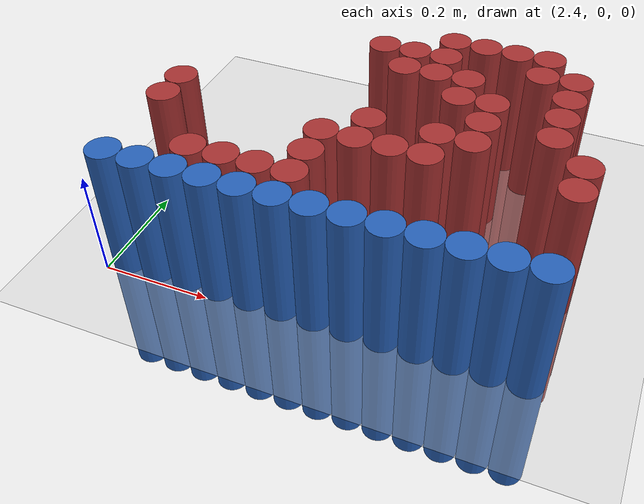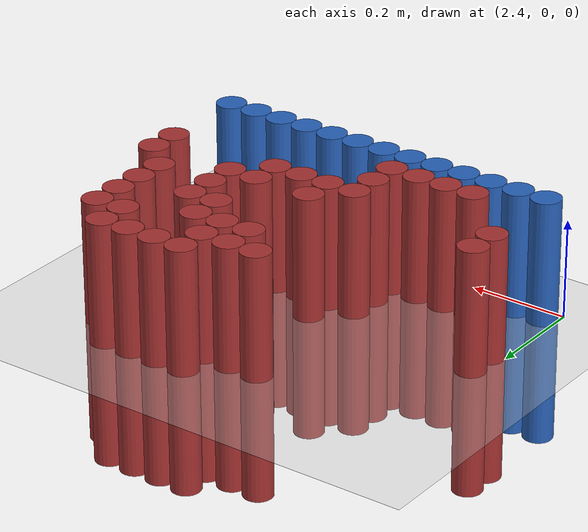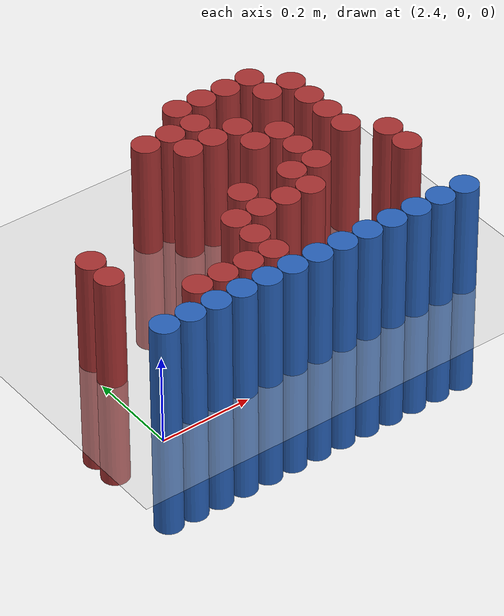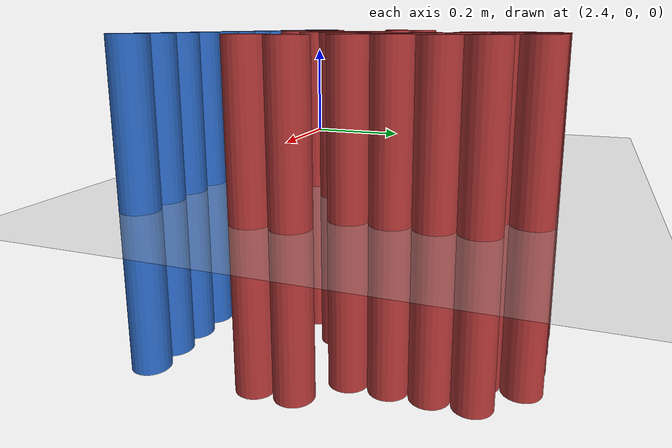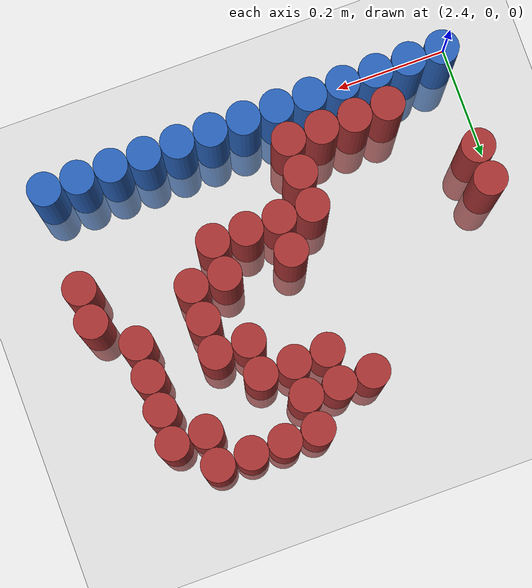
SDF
<sdf version="1.6">
 <world name="default">
  <model name="ground_plane">
   <static>1</static>
   <link name="link">
    <collision name="collision">
     <geometry><plane><normal>0 0 1</normal><size>100 100</size></plane></geometry>
     <surface><friction><ode><mu>100</mu><mu2>50</mu2></ode></friction></surface>
    </collision>
    <visual name="visual">
     <cast_shadows>0</cast_shadows>
     <geometry><plane><normal>0 0 1</normal><size>100 100</size></plane></geometry>
     <material>
      <script><uri>file://media/materials/scripts/gazebo.material</uri><name>Gazebo/Grey</name></script>
     </material>
    </visual>
   </link>
  </model>
  <model name="unit_cylinder_221">
   <static>1</static>
   <pose>2.850000 0.570000 0.000000 0.000000 0.000000 0.000000</pose>
   <link name="link">
    <inertial>
     <mass>1</mass>
     <inertia><ixx>0.145833</ixx><ixy>0</ixy><ixz>0</ixz><iyy>0.145833</iyy><iyz>0</iyz><izz>0.125</izz></inertia>
    </inertial>
    <collision name="collision">
     <geometry><cylinder><radius>0.030000</radius><length>0.5</length></cylinder></geometry>
    </collision>
    <visual name="visual">
     <geometry><cylinder><radius>0.030000</radius><length>0.5</length></cylinder></geometry>
     <material>
      <ambient>0.648000 0.192000 0.192000 1</ambient>
      <diffuse>0.648000 0.192000 0.192000 1</diffuse>
     </material>
     <material>
      <script><name>Gazebo/Grey</name><uri>file://media/materials/scripts/gazebo.material</uri></script>
     </material>
    </visual>
   </link>
  </model>
  <model name="unit_cylinder_222">
   <static>1</static>
   <pose>2.910000 0.570000 0.000000 0.000000 0.000000 0.000000</pose>
   <link name="link">
    <inertial>
     <mass>1</mass>
     <inertia><ixx>0.145833</ixx><ixy>0</ixy><ixz>0</ixz><iyy>0.145833</iyy><iyz>0</iyz><izz>0.125</izz></inertia>
    </inertial>
    <collision name="collision">
     <geometry><cylinder><radius>0.030000</radius><length>0.5</length></cylinder></geometry>
    </collision>
    <visual name="visual">
     <geometry><cylinder><radius>0.030000</radius><length>0.5</length></cylinder></geometry>
     <material>
      <ambient>0.648000 0.192000 0.192000 1</ambient>
      <diffuse>0.648000 0.192000 0.192000 1</diffuse>
     </material>
     <material>
      <script><name>Gazebo/Grey</name><uri>file://media/materials/scripts/gazebo.material</uri></script>
     </material>
    </visual>
   </link>
  </model>
  <model name="unit_cylinder_223">
   <static>1</static>
   <pose>2.970000 0.570000 0.000000 0.000000 0.000000 0.000000</pose>
   <link name="link">
    <inertial>
     <mass>1</mass>
     <inertia><ixx>0.145833</ixx><ixy>0</ixy><ixz>0</ixz><iyy>0.145833</iyy><iyz>0</iyz><izz>0.125</izz></inertia>
    </inertial>
    <collision name="collision">
     <geometry><cylinder><radius>0.030000</radius><length>0.5</length></cylinder></geometry>
    </collision>
    <visual name="visual">
     <geometry><cylinder><radius>0.030000</radius><length>0.5</length></cylinder></geometry>
     <material>
      <ambient>0.648000 0.192000 0.192000 1</ambient>
      <diffuse>0.648000 0.192000 0.192000 1</diffuse>
     </material>
     <material>
      <script><name>Gazebo/Grey</name><uri>file://media/materials/scripts/gazebo.material</uri></script>
     </material>
    </visual>
   </link>
  </model>
  <model name="unit_cylinder_224">
   <static>1</static>
   <pose>3.030000 0.570000 0.000000 0.000000 0.000000 0.000000</pose>
   <link name="link">
    <inertial>
     <mass>1</mass>
     <inertia><ixx>0.145833</ixx><ixy>0</ixy><ixz>0</ixz><iyy>0.145833</iyy><iyz>0</iyz><izz>0.125</izz></inertia>
    </inertial>
    <collision name="collision">
     <geometry><cylinder><radius>0.030000</radius><length>0.5</length></cylinder></geometry>
    </collision>
    <visual name="visual">
     <geometry><cylinder><radius>0.030000</radius><length>0.5</length></cylinder></geometry>
     <material>
      <ambient>0.648000 0.192000 0.192000 1</ambient>
      <diffuse>0.648000 0.192000 0.192000 1</diffuse>
     </material>
     <material>
      <script><name>Gazebo/Grey</name><uri>file://media/materials/scripts/gazebo.material</uri></script>
     </material>
    </visual>
   </link>
  </model>
  <model name="unit_cylinder_231">
   <static>1</static>
   <pose>2.730000 0.510000 0.000000 0.000000 0.000000 0.000000</pose>
   <link name="link">
    <inertial>
     <mass>1</mass>
     <inertia><ixx>0.145833</ixx><ixy>0</ixy><ixz>0</ixz><iyy>0.145833</iyy><iyz>0</iyz><izz>0.125</izz></inertia>
    </inertial>
    <collision name="collision">
     <geometry><cylinder><radius>0.030000</radius><length>0.5</length></cylinder></geometry>
    </collision>
    <visual name="visual">
     <geometry><cylinder><radius>0.030000</radius><length>0.5</length></cylinder></geometry>
     <material>
      <ambient>0.648000 0.192000 0.192000 1</ambient>
      <diffuse>0.648000 0.192000 0.192000 1</diffuse>
     </material>
     <material>
      <script><name>Gazebo/Grey</name><uri>file://media/materials/scripts/gazebo.material</uri></script>
     </material>
    </visual>
   </link>
  </model>
  <model name="unit_cylinder_232">
   <static>1</static>
   <pose>2.790000 0.510000 0.000000 0.000000 0.000000 0.000000</pose>
   <link name="link">
    <inertial>
     <mass>1</mass>
     <inertia><ixx>0.145833</ixx><ixy>0</ixy><ixz>0</ixz><iyy>0.145833</iyy><iyz>0</iyz><izz>0.125</izz></inertia>
    </inertial>
    <collision name="collision">
     <geometry><cylinder><radius>0.030000</radius><length>0.5</length></cylinder></geometry>
    </collision>
    <visual name="visual">
     <geometry><cylinder><radius>0.030000</radius><length>0.5</length></cylinder></geometry>
     <material>
      <ambient>0.648000 0.192000 0.192000 1</ambient>
      <diffuse>0.648000 0.192000 0.192000 1</diffuse>
     </material>
     <material>
      <script><name>Gazebo/Grey</name><uri>file://media/materials/scripts/gazebo.material</uri></script>
     </material>
    </visual>
   </link>
  </model>
  <model name="unit_cylinder_233">
   <static>1</static>
   <pose>2.850000 0.510000 0.000000 0.000000 0.000000 0.000000</pose>
   <link name="link">
    <inertial>
     <mass>1</mass>
     <inertia><ixx>0.145833</ixx><ixy>0</ixy><ixz>0</ixz><iyy>0.145833</iyy><iyz>0</iyz><izz>0.125</izz></inertia>
    </inertial>
    <collision name="collision">
     <geometry><cylinder><radius>0.030000</radius><length>0.5</length></cylinder></geometry>
    </collision>
    <visual name="visual">
     <geometry><cylinder><radius>0.030000</radius><length>0.5</length></cylinder></geometry>
     <material>
      <ambient>0.648000 0.192000 0.192000 1</ambient>
      <diffuse>0.648000 0.192000 0.192000 1</diffuse>
     </material>
     <material>
      <script><name>Gazebo/Grey</name><uri>file://media/materials/scripts/gazebo.material</uri></script>
     </material>
    </visual>
   </link>
  </model>
  <model name="unit_cylinder_234">
   <static>1</static>
   <pose>3.030000 0.510000 0.000000 0.000000 0.000000 0.000000</pose>
   <link name="link">
    <inertial>
     <mass>1</mass>
     <inertia><ixx>0.145833</ixx><ixy>0</ixy><ixz>0</ixz><iyy>0.145833</iyy><iyz>0</iyz><izz>0.125</izz></inertia>
    </inertial>
    <collision name="collision">
     <geometry><cylinder><radius>0.030000</radius><length>0.5</length></cylinder></geometry>
    </collision>
    <visual name="visual">
     <geometry><cylinder><radius>0.030000</radius><length>0.5</length></cylinder></geometry>
     <material>
      <ambient>0.648000 0.192000 0.192000 1</ambient>
      <diffuse>0.648000 0.192000 0.192000 1</diffuse>
     </material>
     <material>
      <script><name>Gazebo/Grey</name><uri>file://media/materials/scripts/gazebo.material</uri></script>
     </material>
    </visual>
   </link>
  </model>
  <model name="unit_cylinder_235">
   <static>1</static>
   <pose>3.090000 0.510000 0.000000 0.000000 0.000000 0.000000</pose>
   <link name="link">
    <inertial>
     <mass>1</mass>
     <inertia><ixx>0.145833</ixx><ixy>0</ixy><ixz>0</ixz><iyy>0.145833</iyy><iyz>0</iyz><izz>0.125</izz></inertia>
    </inertial>
    <collision name="collision">
     <geometry><cylinder><radius>0.030000</radius><length>0.5</length></cylinder></geometry>
    </collision>
    <visual name="visual">
     <geometry><cylinder><radius>0.030000</radius><length>0.5</length></cylinder></geometry>
     <material>
      <ambient>0.648000 0.192000 0.192000 1</ambient>
      <diffuse>0.648000 0.192000 0.192000 1</diffuse>
     </material>
     <material>
      <script><name>Gazebo/Grey</name><uri>file://media/materials/scripts/gazebo.material</uri></script>
     </material>
    </visual>
   </link>
  </model>
  <model name="unit_cylinder_242">
   <static>1</static>
   <pose>2.790000 0.450000 0.000000 0.000000 0.000000 0.000000</pose>
   <link name="link">
    <inertial>
     <mass>1</mass>
     <inertia><ixx>0.145833</ixx><ixy>0</ixy><ixz>0</ixz><iyy>0.145833</iyy><iyz>0</iyz><izz>0.125</izz></inertia>
    </inertial>
    <collision name="collision">
     <geometry><cylinder><radius>0.030000</radius><length>0.5</length></cylinder></geometry>
    </collision>
    <visual name="visual">
     <geometry><cylinder><radius>0.030000</radius><length>0.5</length></cylinder></geometry>
     <material>
      <ambient>0.648000 0.192000 0.192000 1</ambient>
      <diffuse>0.648000 0.192000 0.192000 1</diffuse>
     </material>
     <material>
      <script><name>Gazebo/Grey</name><uri>file://media/materials/scripts/gazebo.material</uri></script>
     </material>
    </visual>
   </link>
  </model>
  <model name="unit_cylinder_243">
   <static>1</static>
   <pose>2.850000 0.450000 0.000000 0.000000 0.000000 0.000000</pose>
   <link name="link">
    <inertial>
     <mass>1</mass>
     <inertia><ixx>0.145833</ixx><ixy>0</ixy><ixz>0</ixz><iyy>0.145833</iyy><iyz>0</iyz><izz>0.125</izz></inertia>
    </inertial>
    <collision name="collision">
     <geometry><cylinder><radius>0.030000</radius><length>0.5</length></cylinder></geometry>
    </collision>
    <visual name="visual">
     <geometry><cylinder><radius>0.030000</radius><length>0.5</length></cylinder></geometry>
     <material>
      <ambient>0.648000 0.192000 0.192000 1</ambient>
      <diffuse>0.648000 0.192000 0.192000 1</diffuse>
     </material>
     <material>
      <script><name>Gazebo/Grey</name><uri>file://media/materials/scripts/gazebo.material</uri></script>
     </material>
    </visual>
   </link>
  </model>
  <model name="unit_cylinder_244">
   <static>1</static>
   <pose>2.910000 0.450000 0.000000 0.000000 0.000000 0.000000</pose>
   <link name="link">
    <inertial>
     <mass>1</mass>
     <inertia><ixx>0.145833</ixx><ixy>0</ixy><ixz>0</ixz><iyy>0.145833</iyy><iyz>0</iyz><izz>0.125</izz></inertia>
    </inertial>
    <collision name="collision">
     <geometry><cylinder><radius>0.030000</radius><length>0.5</length></cylinder></geometry>
    </collision>
    <visual name="visual">
     <geometry><cylinder><radius>0.030000</radius><length>0.5</length></cylinder></geometry>
     <material>
      <ambient>0.648000 0.192000 0.192000 1</ambient>
      <diffuse>0.648000 0.192000 0.192000 1</diffuse>
     </material>
     <material>
      <script><name>Gazebo/Grey</name><uri>file://media/materials/scripts/gazebo.material</uri></script>
     </material>
    </visual>
   </link>
  </model>
  <model name="unit_cylinder_245">
   <static>1</static>
   <pose>3.090000 0.450000 0.000000 0.000000 0.000000 0.000000</pose>
   <link name="link">
    <inertial>
     <mass>1</mass>
     <inertia><ixx>0.145833</ixx><ixy>0</ixy><ixz>0</ixz><iyy>0.145833</iyy><iyz>0</iyz><izz>0.125</izz></inertia>
    </inertial>
    <collision name="collision">
     <geometry><cylinder><radius>0.030000</radius><length>0.5</length></cylinder></geometry>
    </collision>
    <visual name="visual">
     <geometry><cylinder><radius>0.030000</radius><length>0.5</length></cylinder></geometry>
     <material>
      <ambient>0.648000 0.192000 0.192000 1</ambient>
      <diffuse>0.648000 0.192000 0.192000 1</diffuse>
     </material>
     <material>
      <script><name>Gazebo/Grey</name><uri>file://media/materials/scripts/gazebo.material</uri></script>
     </material>
    </visual>
   </link>
  </model>
  <model name="unit_cylinder_248">
   <static>1</static>
   <pose>2.910000 0.390000 0.000000 0.000000 0.000000 0.000000</pose>
   <link name="link">
    <inertial>
     <mass>1</mass>
     <inertia><ixx>0.145833</ixx><ixy>0</ixy><ixz>0</ixz><iyy>0.145833</iyy><iyz>0</iyz><izz>0.125</izz></inertia>
    </inertial>
    <collision name="collision">
     <geometry><cylinder><radius>0.030000</radius><length>0.5</length></cylinder></geometry>
    </collision>
    <visual name="visual">
     <geometry><cylinder><radius>0.030000</radius><length>0.5</length></cylinder></geometry>
     <material>
      <ambient>0.648000 0.192000 0.192000 1</ambient>
      <diffuse>0.648000 0.192000 0.192000 1</diffuse>
     </material>
     <material>
      <script><name>Gazebo/Grey</name><uri>file://media/materials/scripts/gazebo.material</uri></script>
     </material>
    </visual>
   </link>
  </model>
  <model name="unit_cylinder_249">
   <static>1</static>
   <pose>2.970000 0.390000 0.000000 0.000000 0.000000 0.000000</pose>
   <link name="link">
    <inertial>
     <mass>1</mass>
     <inertia><ixx>0.145833</ixx><ixy>0</ixy><ixz>0</ixz><iyy>0.145833</iyy><iyz>0</iyz><izz>0.125</izz></inertia>
    </inertial>
    <collision name="collision">
     <geometry><cylinder><radius>0.030000</radius><length>0.5</length></cylinder></geometry>
    </collision>
    <visual name="visual">
     <geometry><cylinder><radius>0.030000</radius><length>0.5</length></cylinder></geometry>
     <material>
      <ambient>0.648000 0.192000 0.192000 1</ambient>
      <diffuse>0.648000 0.192000 0.192000 1</diffuse>
     </material>
     <material>
      <script><name>Gazebo/Grey</name><uri>file://media/materials/scripts/gazebo.material</uri></script>
     </material>
    </visual>
   </link>
  </model>
  <model name="unit_cylinder_250">
   <static>1</static>
   <pose>3.090000 0.390000 0.000000 0.000000 0.000000 0.000000</pose>
   <link name="link">
    <inertial>
     <mass>1</mass>
     <inertia><ixx>0.145833</ixx><ixy>0</ixy><ixz>0</ixz><iyy>0.145833</iyy><iyz>0</iyz><izz>0.125</izz></inertia>
    </inertial>
    <collision name="collision">
     <geometry><cylinder><radius>0.030000</radius><length>0.5</length></cylinder></geometry>
    </collision>
    <visual name="visual">
     <geometry><cylinder><radius>0.030000</radius><length>0.5</length></cylinder></geometry>
     <material>
      <ambient>0.648000 0.192000 0.192000 1</ambient>
      <diffuse>0.648000 0.192000 0.192000 1</diffuse>
     </material>
     <material>
      <script><name>Gazebo/Grey</name><uri>file://media/materials/scripts/gazebo.material</uri></script>
     </material>
    </visual>
   </link>
  </model>
  <model name="unit_cylinder_256">
   <static>1</static>
   <pose>2.970000 0.330000 0.000000 0.000000 0.000000 0.000000</pose>
   <link name="link">
    <inertial>
     <mass>1</mass>
     <inertia><ixx>0.145833</ixx><ixy>0</ixy><ixz>0</ixz><iyy>0.145833</iyy><iyz>0</iyz><izz>0.125</izz></inertia>
    </inertial>
    <collision name="collision">
     <geometry><cylinder><radius>0.030000</radius><length>0.5</length></cylinder></geometry>
    </collision>
    <visual name="visual">
     <geometry><cylinder><radius>0.030000</radius><length>0.5</length></cylinder></geometry>
     <material>
      <ambient>0.648000 0.192000 0.192000 1</ambient>
      <diffuse>0.648000 0.192000 0.192000 1</diffuse>
     </material>
     <material>
      <script><name>Gazebo/Grey</name><uri>file://media/materials/scripts/gazebo.material</uri></script>
     </material>
    </visual>
   </link>
  </model>
  <model name="unit_cylinder_257">
   <static>1</static>
   <pose>3.090000 0.330000 0.000000 0.000000 0.000000 0.000000</pose>
   <link name="link">
    <inertial>
     <mass>1</mass>
     <inertia><ixx>0.145833</ixx><ixy>0</ixy><ixz>0</ixz><iyy>0.145833</iyy><iyz>0</iyz><izz>0.125</izz></inertia>
    </inertial>
    <collision name="collision">
     <geometry><cylinder><radius>0.030000</radius><length>0.5</length></cylinder></geometry>
    </collision>
    <visual name="visual">
     <geometry><cylinder><radius>0.030000</radius><length>0.5</length></cylinder></geometry>
     <material>
      <ambient>0.648000 0.192000 0.192000 1</ambient>
      <diffuse>0.648000 0.192000 0.192000 1</diffuse>
     </material>
     <material>
      <script><name>Gazebo/Grey</name><uri>file://media/materials/scripts/gazebo.material</uri></script>
     </material>
    </visual>
   </link>
  </model>
  <model name="unit_cylinder_265">
   <static>1</static>
   <pose>2.430000 0.270000 0.000000 0.000000 0.000000 0.000000</pose>
   <link name="link">
    <inertial>
     <mass>1</mass>
     <inertia><ixx>0.145833</ixx><ixy>0</ixy><ixz>0</ixz><iyy>0.145833</iyy><iyz>0</iyz><izz>0.125</izz></inertia>
    </inertial>
    <collision name="collision">
     <geometry><cylinder><radius>0.030000</radius><length>0.5</length></cylinder></geometry>
    </collision>
    <visual name="visual">
     <geometry><cylinder><radius>0.030000</radius><length>0.5</length></cylinder></geometry>
     <material>
      <ambient>0.648000 0.192000 0.192000 1</ambient>
      <diffuse>0.648000 0.192000 0.192000 1</diffuse>
     </material>
     <material>
      <script><name>Gazebo/Grey</name><uri>file://media/materials/scripts/gazebo.material</uri></script>
     </material>
    </visual>
   </link>
  </model>
  <model name="unit_cylinder_266">
   <static>1</static>
   <pose>2.790000 0.270000 0.000000 0.000000 0.000000 0.000000</pose>
   <link name="link">
    <inertial>
     <mass>1</mass>
     <inertia><ixx>0.145833</ixx><ixy>0</ixy><ixz>0</ixz><iyy>0.145833</iyy><iyz>0</iyz><izz>0.125</izz></inertia>
    </inertial>
    <collision name="collision">
     <geometry><cylinder><radius>0.030000</radius><length>0.5</length></cylinder></geometry>
    </collision>
    <visual name="visual">
     <geometry><cylinder><radius>0.030000</radius><length>0.5</length></cylinder></geometry>
     <material>
      <ambient>0.648000 0.192000 0.192000 1</ambient>
      <diffuse>0.648000 0.192000 0.192000 1</diffuse>
     </material>
     <material>
      <script><name>Gazebo/Grey</name><uri>file://media/materials/scripts/gazebo.material</uri></script>
     </material>
    </visual>
   </link>
  </model>
  <model name="unit_cylinder_267">
   <static>1</static>
   <pose>2.910000 0.270000 0.000000 0.000000 0.000000 0.000000</pose>
   <link name="link">
    <inertial>
     <mass>1</mass>
     <inertia><ixx>0.145833</ixx><ixy>0</ixy><ixz>0</ixz><iyy>0.145833</iyy><iyz>0</iyz><izz>0.125</izz></inertia>
    </inertial>
    <collision name="collision">
     <geometry><cylinder><radius>0.030000</radius><length>0.5</length></cylinder></geometry>
    </collision>
    <visual name="visual">
     <geometry><cylinder><radius>0.030000</radius><length>0.5</length></cylinder></geometry>
     <material>
      <ambient>0.648000 0.192000 0.192000 1</ambient>
      <diffuse>0.648000 0.192000 0.192000 1</diffuse>
     </material>
     <material>
      <script><name>Gazebo/Grey</name><uri>file://media/materials/scripts/gazebo.material</uri></script>
     </material>
    </visual>
   </link>
  </model>
  <model name="unit_cylinder_268">
   <static>1</static>
   <pose>2.970000 0.270000 0.000000 0.000000 0.000000 0.000000</pose>
   <link name="link">
    <inertial>
     <mass>1</mass>
     <inertia><ixx>0.145833</ixx><ixy>0</ixy><ixz>0</ixz><iyy>0.145833</iyy><iyz>0</iyz><izz>0.125</izz></inertia>
    </inertial>
    <collision name="collision">
     <geometry><cylinder><radius>0.030000</radius><length>0.5</length></cylinder></geometry>
    </collision>
    <visual name="visual">
     <geometry><cylinder><radius>0.030000</radius><length>0.5</length></cylinder></geometry>
     <material>
      <ambient>0.648000 0.192000 0.192000 1</ambient>
      <diffuse>0.648000 0.192000 0.192000 1</diffuse>
     </material>
     <material>
      <script><name>Gazebo/Grey</name><uri>file://media/materials/scripts/gazebo.material</uri></script>
     </material>
    </visual>
   </link>
  </model>
  <model name="unit_cylinder_269">
   <static>1</static>
   <pose>3.150000 0.270000 0.000000 0.000000 0.000000 0.000000</pose>
   <link name="link">
    <inertial>
     <mass>1</mass>
     <inertia><ixx>0.145833</ixx><ixy>0</ixy><ixz>0</ixz><iyy>0.145833</iyy><iyz>0</iyz><izz>0.125</izz></inertia>
    </inertial>
    <collision name="collision">
     <geometry><cylinder><radius>0.030000</radius><length>0.5</length></cylinder></geometry>
    </collision>
    <visual name="visual">
     <geometry><cylinder><radius>0.030000</radius><length>0.5</length></cylinder></geometry>
     <material>
      <ambient>0.648000 0.192000 0.192000 1</ambient>
      <diffuse>0.648000 0.192000 0.192000 1</diffuse>
     </material>
     <material>
      <script><name>Gazebo/Grey</name><uri>file://media/materials/scripts/gazebo.material</uri></script>
     </material>
    </visual>
   </link>
  </model>
  <model name="unit_cylinder_274">
   <static>1</static>
   <pose>2.430000 0.210000 0.000000 0.000000 0.000000 0.000000</pose>
   <link name="link">
    <inertial>
     <mass>1</mass>
     <inertia><ixx>0.145833</ixx><ixy>0</ixy><ixz>0</ixz><iyy>0.145833</iyy><iyz>0</iyz><izz>0.125</izz></inertia>
    </inertial>
    <collision name="collision">
     <geometry><cylinder><radius>0.030000</radius><length>0.5</length></cylinder></geometry>
    </collision>
    <visual name="visual">
     <geometry><cylinder><radius>0.030000</radius><length>0.5</length></cylinder></geometry>
     <material>
      <ambient>0.648000 0.192000 0.192000 1</ambient>
      <diffuse>0.648000 0.192000 0.192000 1</diffuse>
     </material>
     <material>
      <script><name>Gazebo/Grey</name><uri>file://media/materials/scripts/gazebo.material</uri></script>
     </material>
    </visual>
   </link>
  </model>
  <model name="unit_cylinder_275">
   <static>1</static>
   <pose>2.730000 0.210000 0.000000 0.000000 0.000000 0.000000</pose>
   <link name="link">
    <inertial>
     <mass>1</mass>
     <inertia><ixx>0.145833</ixx><ixy>0</ixy><ixz>0</ixz><iyy>0.145833</iyy><iyz>0</iyz><izz>0.125</izz></inertia>
    </inertial>
    <collision name="collision">
     <geometry><cylinder><radius>0.030000</radius><length>0.5</length></cylinder></geometry>
    </collision>
    <visual name="visual">
     <geometry><cylinder><radius>0.030000</radius><length>0.5</length></cylinder></geometry>
     <material>
      <ambient>0.648000 0.192000 0.192000 1</ambient>
      <diffuse>0.648000 0.192000 0.192000 1</diffuse>
     </material>
     <material>
      <script><name>Gazebo/Grey</name><uri>file://media/materials/scripts/gazebo.material</uri></script>
     </material>
    </visual>
   </link>
  </model>
  <model name="unit_cylinder_276">
   <static>1</static>
   <pose>2.790000 0.210000 0.000000 0.000000 0.000000 0.000000</pose>
   <link name="link">
    <inertial>
     <mass>1</mass>
     <inertia><ixx>0.145833</ixx><ixy>0</ixy><ixz>0</ixz><iyy>0.145833</iyy><iyz>0</iyz><izz>0.125</izz></inertia>
    </inertial>
    <collision name="collision">
     <geometry><cylinder><radius>0.030000</radius><length>0.5</length></cylinder></geometry>
    </collision>
    <visual name="visual">
     <geometry><cylinder><radius>0.030000</radius><length>0.5</length></cylinder></geometry>
     <material>
      <ambient>0.648000 0.192000 0.192000 1</ambient>
      <diffuse>0.648000 0.192000 0.192000 1</diffuse>
     </material>
     <material>
      <script><name>Gazebo/Grey</name><uri>file://media/materials/scripts/gazebo.material</uri></script>
     </material>
    </visual>
   </link>
  </model>
  <model name="unit_cylinder_277">
   <static>1</static>
   <pose>2.850000 0.210000 0.000000 0.000000 0.000000 0.000000</pose>
   <link name="link">
    <inertial>
     <mass>1</mass>
     <inertia><ixx>0.145833</ixx><ixy>0</ixy><ixz>0</ixz><iyy>0.145833</iyy><iyz>0</iyz><izz>0.125</izz></inertia>
    </inertial>
    <collision name="collision">
     <geometry><cylinder><radius>0.030000</radius><length>0.5</length></cylinder></geometry>
    </collision>
    <visual name="visual">
     <geometry><cylinder><radius>0.030000</radius><length>0.5</length></cylinder></geometry>
     <material>
      <ambient>0.648000 0.192000 0.192000 1</ambient>
      <diffuse>0.648000 0.192000 0.192000 1</diffuse>
     </material>
     <material>
      <script><name>Gazebo/Grey</name><uri>file://media/materials/scripts/gazebo.material</uri></script>
     </material>
    </visual>
   </link>
  </model>
  <model name="unit_cylinder_278">
   <static>1</static>
   <pose>2.910000 0.210000 0.000000 0.000000 0.000000 0.000000</pose>
   <link name="link">
    <inertial>
     <mass>1</mass>
     <inertia><ixx>0.145833</ixx><ixy>0</ixy><ixz>0</ixz><iyy>0.145833</iyy><iyz>0</iyz><izz>0.125</izz></inertia>
    </inertial>
    <collision name="collision">
     <geometry><cylinder><radius>0.030000</radius><length>0.5</length></cylinder></geometry>
    </collision>
    <visual name="visual">
     <geometry><cylinder><radius>0.030000</radius><length>0.5</length></cylinder></geometry>
     <material>
      <ambient>0.648000 0.192000 0.192000 1</ambient>
      <diffuse>0.648000 0.192000 0.192000 1</diffuse>
     </material>
     <material>
      <script><name>Gazebo/Grey</name><uri>file://media/materials/scripts/gazebo.material</uri></script>
     </material>
    </visual>
   </link>
  </model>
  <model name="unit_cylinder_279">
   <static>1</static>
   <pose>3.150000 0.210000 0.000000 0.000000 0.000000 0.000000</pose>
   <link name="link">
    <inertial>
     <mass>1</mass>
     <inertia><ixx>0.145833</ixx><ixy>0</ixy><ixz>0</ixz><iyy>0.145833</iyy><iyz>0</iyz><izz>0.125</izz></inertia>
    </inertial>
    <collision name="collision">
     <geometry><cylinder><radius>0.030000</radius><length>0.5</length></cylinder></geometry>
    </collision>
    <visual name="visual">
     <geometry><cylinder><radius>0.030000</radius><length>0.5</length></cylinder></geometry>
     <material>
      <ambient>0.648000 0.192000 0.192000 1</ambient>
      <diffuse>0.648000 0.192000 0.192000 1</diffuse>
     </material>
     <material>
      <script><name>Gazebo/Grey</name><uri>file://media/materials/scripts/gazebo.material</uri></script>
     </material>
    </visual>
   </link>
  </model>
  <model name="unit_cylinder_284">
   <static>1</static>
   <pose>2.730000 0.150000 0.000000 0.000000 0.000000 0.000000</pose>
   <link name="link">
    <inertial>
     <mass>1</mass>
     <inertia><ixx>0.145833</ixx><ixy>0</ixy><ixz>0</ixz><iyy>0.145833</iyy><iyz>0</iyz><izz>0.125</izz></inertia>
    </inertial>
    <collision name="collision">
     <geometry><cylinder><radius>0.030000</radius><length>0.5</length></cylinder></geometry>
    </collision>
    <visual name="visual">
     <geometry><cylinder><radius>0.030000</radius><length>0.5</length></cylinder></geometry>
     <material>
      <ambient>0.648000 0.192000 0.192000 1</ambient>
      <diffuse>0.648000 0.192000 0.192000 1</diffuse>
     </material>
     <material>
      <script><name>Gazebo/Grey</name><uri>file://media/materials/scripts/gazebo.material</uri></script>
     </material>
    </visual>
   </link>
  </model>
  <model name="unit_cylinder_295">
   <static>1</static>
   <pose>2.550000 0.090000 0.000000 0.000000 0.000000 0.000000</pose>
   <link name="link">
    <inertial>
     <mass>1</mass>
     <inertia><ixx>0.145833</ixx><ixy>0</ixy><ixz>0</ixz><iyy>0.145833</iyy><iyz>0</iyz><izz>0.125</izz></inertia>
    </inertial>
    <collision name="collision">
     <geometry><cylinder><radius>0.030000</radius><length>0.5</length></cylinder></geometry>
    </collision>
    <visual name="visual">
     <geometry><cylinder><radius>0.030000</radius><length>0.5</length></cylinder></geometry>
     <material>
      <ambient>0.648000 0.192000 0.192000 1</ambient>
      <diffuse>0.648000 0.192000 0.192000 1</diffuse>
     </material>
     <material>
      <script><name>Gazebo/Grey</name><uri>file://media/materials/scripts/gazebo.material</uri></script>
     </material>
    </visual>
   </link>
  </model>
  <model name="unit_cylinder_296">
   <static>1</static>
   <pose>2.610000 0.090000 0.000000 0.000000 0.000000 0.000000</pose>
   <link name="link">
    <inertial>
     <mass>1</mass>
     <inertia><ixx>0.145833</ixx><ixy>0</ixy><ixz>0</ixz><iyy>0.145833</iyy><iyz>0</iyz><izz>0.125</izz></inertia>
    </inertial>
    <collision name="collision">
     <geometry><cylinder><radius>0.030000</radius><length>0.5</length></cylinder></geometry>
    </collision>
    <visual name="visual">
     <geometry><cylinder><radius>0.030000</radius><length>0.5</length></cylinder></geometry>
     <material>
      <ambient>0.648000 0.192000 0.192000 1</ambient>
      <diffuse>0.648000 0.192000 0.192000 1</diffuse>
     </material>
     <material>
      <script><name>Gazebo/Grey</name><uri>file://media/materials/scripts/gazebo.material</uri></script>
     </material>
    </visual>
   </link>
  </model>
  <model name="unit_cylinder_297">
   <static>1</static>
   <pose>2.670000 0.090000 0.000000 0.000000 0.000000 0.000000</pose>
   <link name="link">
    <inertial>
     <mass>1</mass>
     <inertia><ixx>0.145833</ixx><ixy>0</ixy><ixz>0</ixz><iyy>0.145833</iyy><iyz>0</iyz><izz>0.125</izz></inertia>
    </inertial>
    <collision name="collision">
     <geometry><cylinder><radius>0.030000</radius><length>0.5</length></cylinder></geometry>
    </collision>
    <visual name="visual">
     <geometry><cylinder><radius>0.030000</radius><length>0.5</length></cylinder></geometry>
     <material>
      <ambient>0.648000 0.192000 0.192000 1</ambient>
      <diffuse>0.648000 0.192000 0.192000 1</diffuse>
     </material>
     <material>
      <script><name>Gazebo/Grey</name><uri>file://media/materials/scripts/gazebo.material</uri></script>
     </material>
    </visual>
   </link>
  </model>
  <model name="unit_cylinder_298">
   <static>1</static>
   <pose>2.730000 0.090000 0.000000 0.000000 0.000000 0.000000</pose>
   <link name="link">
    <inertial>
     <mass>1</mass>
     <inertia><ixx>0.145833</ixx><ixy>0</ixy><ixz>0</ixz><iyy>0.145833</iyy><iyz>0</iyz><izz>0.125</izz></inertia>
    </inertial>
    <collision name="collision">
     <geometry><cylinder><radius>0.030000</radius><length>0.5</length></cylinder></geometry>
    </collision>
    <visual name="visual">
     <geometry><cylinder><radius>0.030000</radius><length>0.5</length></cylinder></geometry>
     <material>
      <ambient>0.648000 0.192000 0.192000 1</ambient>
      <diffuse>0.648000 0.192000 0.192000 1</diffuse>
     </material>
     <material>
      <script><name>Gazebo/Grey</name><uri>file://media/materials/scripts/gazebo.material</uri></script>
     </material>
    </visual>
   </link>
  </model>
  <model name="unit_cylinder_310">
   <static>1</static>
   <pose>2.430000 0.030000 0.000000 0.000000 0.000000 0.000000</pose>
   <link name="link">
    <inertial>
     <mass>1</mass>
     <inertia><ixx>0.145833</ixx><ixy>0</ixy><ixz>0</ixz><iyy>0.145833</iyy><iyz>0</iyz><izz>0.125</izz></inertia>
    </inertial>
    <collision name="collision">
     <geometry><cylinder><radius>0.030000</radius><length>0.5</length></cylinder></geometry>
    </collision>
    <visual name="visual">
     <geometry><cylinder><radius>0.030000</radius><length>0.5</length></cylinder></geometry>
     <material>
      <ambient>0.152000 0.379000 0.720000 1</ambient>
      <diffuse>0.152000 0.379000 0.720000 1</diffuse>
     </material>
     <material>
      <script><name>Gazebo/Grey</name><uri>file://media/materials/scripts/gazebo.material</uri></script>
     </material>
    </visual>
   </link>
  </model>
  <model name="unit_cylinder_311">
   <static>1</static>
   <pose>2.490000 0.030000 0.000000 0.000000 0.000000 0.000000</pose>
   <link name="link">
    <inertial>
     <mass>1</mass>
     <inertia><ixx>0.145833</ixx><ixy>0</ixy><ixz>0</ixz><iyy>0.145833</iyy><iyz>0</iyz><izz>0.125</izz></inertia>
    </inertial>
    <collision name="collision">
     <geometry><cylinder><radius>0.030000</radius><length>0.5</length></cylinder></geometry>
    </collision>
    <visual name="visual">
     <geometry><cylinder><radius>0.030000</radius><length>0.5</length></cylinder></geometry>
     <material>
      <ambient>0.152000 0.379000 0.720000 1</ambient>
      <diffuse>0.152000 0.379000 0.720000 1</diffuse>
     </material>
     <material>
      <script><name>Gazebo/Grey</name><uri>file://media/materials/scripts/gazebo.material</uri></script>
     </material>
    </visual>
   </link>
  </model>
  <model name="unit_cylinder_312">
   <static>1</static>
   <pose>2.550000 0.030000 0.000000 0.000000 0.000000 0.000000</pose>
   <link name="link">
    <inertial>
     <mass>1</mass>
     <inertia><ixx>0.145833</ixx><ixy>0</ixy><ixz>0</ixz><iyy>0.145833</iyy><iyz>0</iyz><izz>0.125</izz></inertia>
    </inertial>
    <collision name="collision">
     <geometry><cylinder><radius>0.030000</radius><length>0.5</length></cylinder></geometry>
    </collision>
    <visual name="visual">
     <geometry><cylinder><radius>0.030000</radius><length>0.5</length></cylinder></geometry>
     <material>
      <ambient>0.152000 0.379000 0.720000 1</ambient>
      <diffuse>0.152000 0.379000 0.720000 1</diffuse>
     </material>
     <material>
      <script><name>Gazebo/Grey</name><uri>file://media/materials/scripts/gazebo.material</uri></script>
     </material>
    </visual>
   </link>
  </model>
  <model name="unit_cylinder_313">
   <static>1</static>
   <pose>2.610000 0.030000 0.000000 0.000000 0.000000 0.000000</pose>
   <link name="link">
    <inertial>
     <mass>1</mass>
     <inertia><ixx>0.145833</ixx><ixy>0</ixy><ixz>0</ixz><iyy>0.145833</iyy><iyz>0</iyz><izz>0.125</izz></inertia>
    </inertial>
    <collision name="collision">
     <geometry><cylinder><radius>0.030000</radius><length>0.5</length></cylinder></geometry>
    </collision>
    <visual name="visual">
     <geometry><cylinder><radius>0.030000</radius><length>0.5</length></cylinder></geometry>
     <material>
      <ambient>0.152000 0.379000 0.720000 1</ambient>
      <diffuse>0.152000 0.379000 0.720000 1</diffuse>
     </material>
     <material>
      <script><name>Gazebo/Grey</name><uri>file://media/materials/scripts/gazebo.material</uri></script>
     </material>
    </visual>
   </link>
  </model>
  <model name="unit_cylinder_314">
   <static>1</static>
   <pose>2.670000 0.030000 0.000000 0.000000 0.000000 0.000000</pose>
   <link name="link">
    <inertial>
     <mass>1</mass>
     <inertia><ixx>0.145833</ixx><ixy>0</ixy><ixz>0</ixz><iyy>0.145833</iyy><iyz>0</iyz><izz>0.125</izz></inertia>
    </inertial>
    <collision name="collision">
     <geometry><cylinder><radius>0.030000</radius><length>0.5</length></cylinder></geometry>
    </collision>
    <visual name="visual">
     <geometry><cylinder><radius>0.030000</radius><length>0.5</length></cylinder></geometry>
     <material>
      <ambient>0.152000 0.379000 0.720000 1</ambient>
      <diffuse>0.152000 0.379000 0.720000 1</diffuse>
     </material>
     <material>
      <script><name>Gazebo/Grey</name><uri>file://media/materials/scripts/gazebo.material</uri></script>
     </material>
    </visual>
   </link>
  </model>
  <model name="unit_cylinder_315">
   <static>1</static>
   <pose>2.730000 0.030000 0.000000 0.000000 0.000000 0.000000</pose>
   <link name="link">
    <inertial>
     <mass>1</mass>
     <inertia><ixx>0.145833</ixx><ixy>0</ixy><ixz>0</ixz><iyy>0.145833</iyy><iyz>0</iyz><izz>0.125</izz></inertia>
    </inertial>
    <collision name="collision">
     <geometry><cylinder><radius>0.030000</radius><length>0.5</length></cylinder></geometry>
    </collision>
    <visual name="visual">
     <geometry><cylinder><radius>0.030000</radius><length>0.5</length></cylinder></geometry>
     <material>
      <ambient>0.152000 0.379000 0.720000 1</ambient>
      <diffuse>0.152000 0.379000 0.720000 1</diffuse>
     </material>
     <material>
      <script><name>Gazebo/Grey</name><uri>file://media/materials/scripts/gazebo.material</uri></script>
     </material>
    </visual>
   </link>
  </model>
  <model name="unit_cylinder_316">
   <static>1</static>
   <pose>2.790000 0.030000 0.000000 0.000000 0.000000 0.000000</pose>
   <link name="link">
    <inertial>
     <mass>1</mass>
     <inertia><ixx>0.145833</ixx><ixy>0</ixy><ixz>0</ixz><iyy>0.145833</iyy><iyz>0</iyz><izz>0.125</izz></inertia>
    </inertial>
    <collision name="collision">
     <geometry><cylinder><radius>0.030000</radius><length>0.5</length></cylinder></geometry>
    </collision>
    <visual name="visual">
     <geometry><cylinder><radius>0.030000</radius><length>0.5</length></cylinder></geometry>
     <material>
      <ambient>0.152000 0.379000 0.720000 1</ambient>
      <diffuse>0.152000 0.379000 0.720000 1</diffuse>
     </material>
     <material>
      <script><name>Gazebo/Grey</name><uri>file://media/materials/scripts/gazebo.material</uri></script>
     </material>
    </visual>
   </link>
  </model>
  <model name="unit_cylinder_317">
   <static>1</static>
   <pose>2.850000 0.030000 0.000000 0.000000 0.000000 0.000000</pose>
   <link name="link">
    <inertial>
     <mass>1</mass>
     <inertia><ixx>0.145833</ixx><ixy>0</ixy><ixz>0</ixz><iyy>0.145833</iyy><iyz>0</iyz><izz>0.125</izz></inertia>
    </inertial>
    <collision name="collision">
     <geometry><cylinder><radius>0.030000</radius><length>0.5</length></cylinder></geometry>
    </collision>
    <visual name="visual">
     <geometry><cylinder><radius>0.030000</radius><length>0.5</length></cylinder></geometry>
     <material>
      <ambient>0.152000 0.379000 0.720000 1</ambient>
      <diffuse>0.152000 0.379000 0.720000 1</diffuse>
     </material>
     <material>
      <script><name>Gazebo/Grey</name><uri>file://media/materials/scripts/gazebo.material</uri></script>
     </material>
    </visual>
   </link>
  </model>
  <model name="unit_cylinder_318">
   <static>1</static>
   <pose>2.910000 0.030000 0.000000 0.000000 0.000000 0.000000</pose>
   <link name="link">
    <inertial>
     <mass>1</mass>
     <inertia><ixx>0.145833</ixx><ixy>0</ixy><ixz>0</ixz><iyy>0.145833</iyy><iyz>0</iyz><izz>0.125</izz></inertia>
    </inertial>
    <collision name="collision">
     <geometry><cylinder><radius>0.030000</radius><length>0.5</length></cylinder></geometry>
    </collision>
    <visual name="visual">
     <geometry><cylinder><radius>0.030000</radius><length>0.5</length></cylinder></geometry>
     <material>
      <ambient>0.152000 0.379000 0.720000 1</ambient>
      <diffuse>0.152000 0.379000 0.720000 1</diffuse>
     </material>
     <material>
      <script><name>Gazebo/Grey</name><uri>file://media/materials/scripts/gazebo.material</uri></script>
     </material>
    </visual>
   </link>
  </model>
  <model name="unit_cylinder_319">
   <static>1</static>
   <pose>2.970000 0.030000 0.000000 0.000000 0.000000 0.000000</pose>
   <link name="link">
    <inertial>
     <mass>1</mass>
     <inertia><ixx>0.145833</ixx><ixy>0</ixy><ixz>0</ixz><iyy>0.145833</iyy><iyz>0</iyz><izz>0.125</izz></inertia>
    </inertial>
    <collision name="collision">
     <geometry><cylinder><radius>0.030000</radius><length>0.5</length></cylinder></geometry>
    </collision>
    <visual name="visual">
     <geometry><cylinder><radius>0.030000</radius><length>0.5</length></cylinder></geometry>
     <material>
      <ambient>0.152000 0.379000 0.720000 1</ambient>
      <diffuse>0.152000 0.379000 0.720000 1</diffuse>
     </material>
     <material>
      <script><name>Gazebo/Grey</name><uri>file://media/materials/scripts/gazebo.material</uri></script>
     </material>
    </visual>
   </link>
  </model>
  <model name="unit_cylinder_320">
   <static>1</static>
   <pose>3.030000 0.030000 0.000000 0.000000 0.000000 0.000000</pose>
   <link name="link">
    <inertial>
     <mass>1</mass>
     <inertia><ixx>0.145833</ixx><ixy>0</ixy><ixz>0</ixz><iyy>0.145833</iyy><iyz>0</iyz><izz>0.125</izz></inertia>
    </inertial>
    <collision name="collision">
     <geometry><cylinder><radius>0.030000</radius><length>0.5</length></cylinder></geometry>
    </collision>
    <visual name="visual">
     <geometry><cylinder><radius>0.030000</radius><length>0.5</length></cylinder></geometry>
     <material>
      <ambient>0.152000 0.379000 0.720000 1</ambient>
      <diffuse>0.152000 0.379000 0.720000 1</diffuse>
     </material>
     <material>
      <script><name>Gazebo/Grey</name><uri>file://media/materials/scripts/gazebo.material</uri></script>
     </material>
    </visual>
   </link>
  </model>
  <model name="unit_cylinder_321">
   <static>1</static>
   <pose>3.090000 0.030000 0.000000 0.000000 0.000000 0.000000</pose>
   <link name="link">
    <inertial>
     <mass>1</mass>
     <inertia><ixx>0.145833</ixx><ixy>0</ixy><ixz>0</ixz><iyy>0.145833</iyy><iyz>0</iyz><izz>0.125</izz></inertia>
    </inertial>
    <collision name="collision">
     <geometry><cylinder><radius>0.030000</radius><length>0.5</length></cylinder></geometry>
    </collision>
    <visual name="visual">
     <geometry><cylinder><radius>0.030000</radius><length>0.5</length></cylinder></geometry>
     <material>
      <ambient>0.152000 0.379000 0.720000 1</ambient>
      <diffuse>0.152000 0.379000 0.720000 1</diffuse>
     </material>
     <material>
      <script><name>Gazebo/Grey</name><uri>file://media/materials/scripts/gazebo.material</uri></script>
     </material>
    </visual>
   </link>
  </model>
  <model name="unit_cylinder_322">
   <static>1</static>
   <pose>3.150000 0.030000 0.000000 0.000000 0.000000 0.000000</pose>
   <link name="link">
    <inertial>
     <mass>1</mass>
     <inertia><ixx>0.145833</ixx><ixy>0</ixy><ixz>0</ixz><iyy>0.145833</iyy><iyz>0</iyz><izz>0.125</izz></inertia>
    </inertial>
    <collision name="collision">
     <geometry><cylinder><radius>0.030000</radius><length>0.5</length></cylinder></geometry>
    </collision>
    <visual name="visual">
     <geometry><cylinder><radius>0.030000</radius><length>0.5</length></cylinder></geometry>
     <material>
      <ambient>0.152000 0.379000 0.720000 1</ambient>
      <diffuse>0.152000 0.379000 0.720000 1</diffuse>
     </material>
     <material>
      <script><name>Gazebo/Grey</name><uri>file://media/materials/scripts/gazebo.material</uri></script>
     </material>
    </visual>
   </link>
  </model>
 </world>
</sdf>
